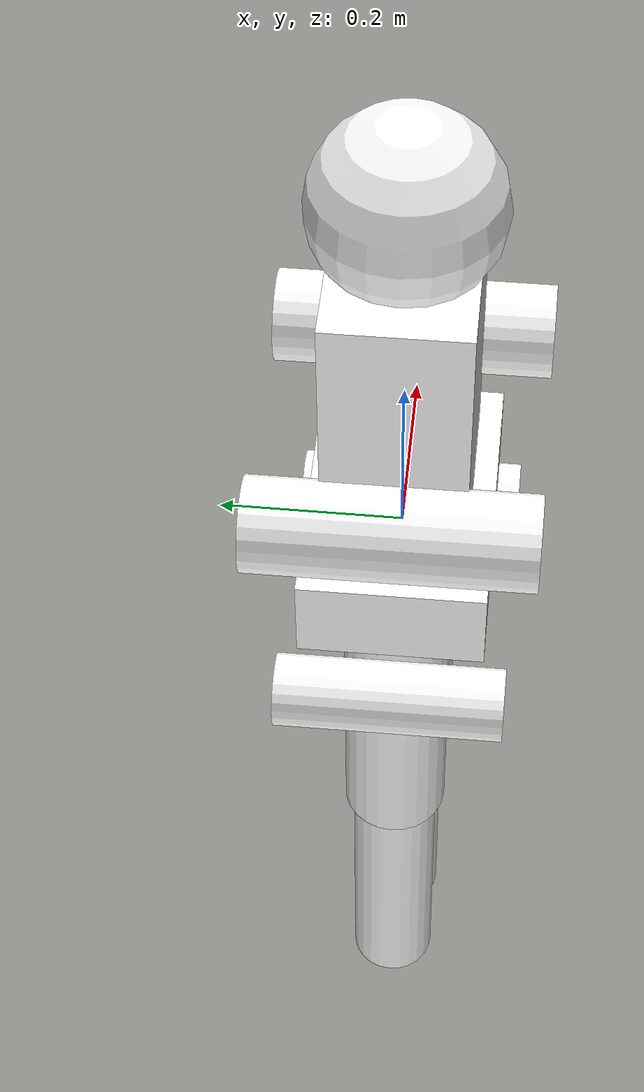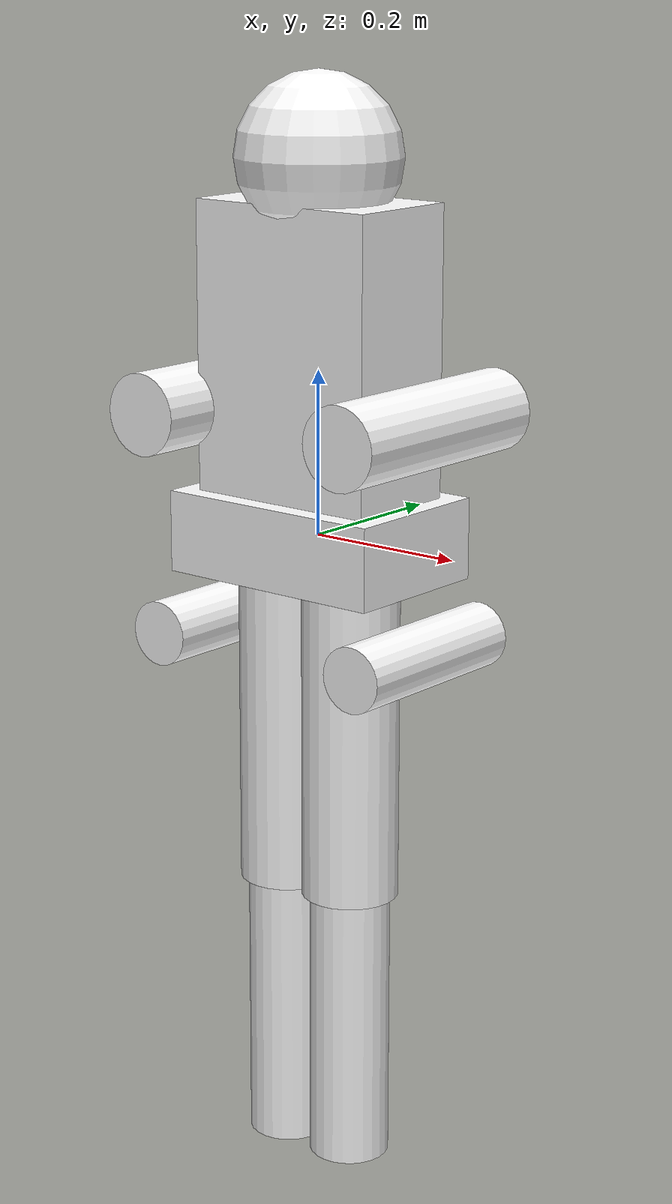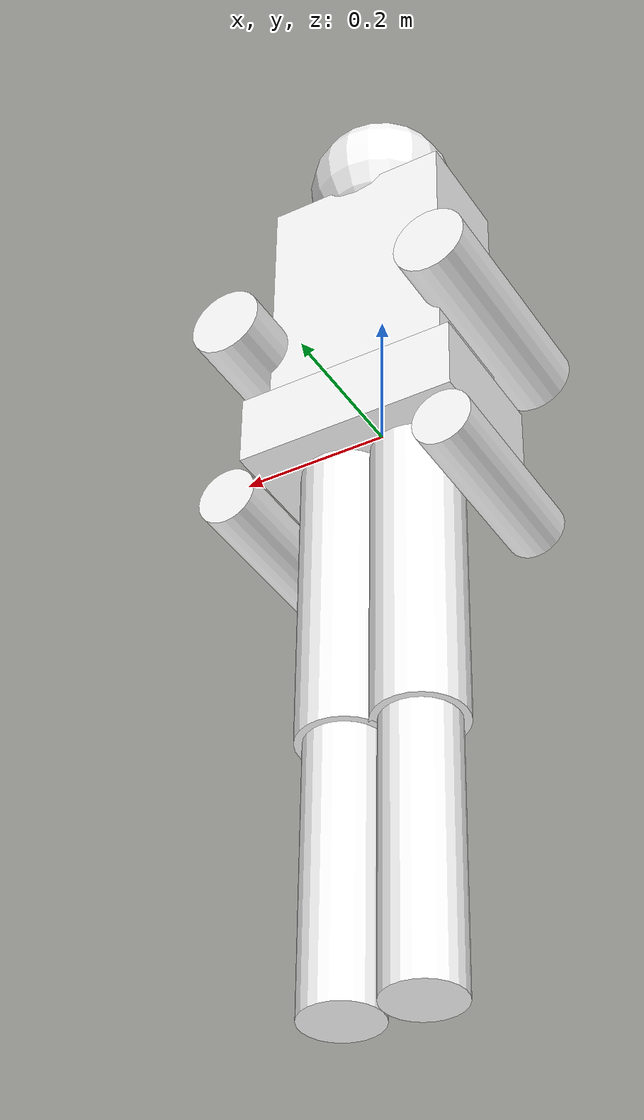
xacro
<?xml version="1.0"?>
<robot name="simple_humanoid" xmlns:xacro="http://www.ros.org/wiki/xacro">

  <!-- Include sensor macros -->
  <xacro:include filename="$(find humanoid_description)/urdf/sensors/lidar.urdf.xacro" />
  <xacro:include filename="$(find humanoid_description)/urdf/sensors/camera.urdf.xacro" />
  <xacro:include filename="$(find humanoid_description)/urdf/sensors/imu.urdf.xacro" />

  <!-- Materials -->
  <material name="blue">
    <color rgba="0.0 0.0 0.8 1.0"/>
  </material>
  <material name="green">
    <color rgba="0.0 0.8 0.0 1.0"/>
  </material>
  <material name="red">
    <color rgba="0.8 0.0 0.0 1.0"/>
  </material>
  <material name="white">
    <color rgba="1.0 1.0 1.0 1.0"/>
  </material>
  <material name="black">
    <color rgba="0.0 0.0 0.0 1.0"/>
  </material>

  <!-- Base Link -->
  <link name="base_link">
    <visual>
      <geometry>
        <box size="0.3 0.2 0.1"/>
      </geometry>
      <material name="white"/>
    </visual>
    <collision>
      <geometry>
        <box size="0.3 0.2 0.1"/>
      </geometry>
    </collision>
    <inertial>
      <mass value="5.0"/>
      <inertia ixx="0.1" ixy="0.0" ixz="0.0" iyy="0.1" iyz="0.0" izz="0.1"/>
    </inertial>
  </link>

  <!-- Torso -->
  <joint name="torso_joint" type="fixed">
    <parent link="base_link"/>
    <child link="torso"/>
    <origin xyz="0 0 0.2" rpy="0 0 0"/>
  </joint>

  <link name="torso">
    <visual>
      <geometry>
        <box size="0.25 0.15 0.4"/>
      </geometry>
      <material name="white"/>
    </visual>
    <collision>
      <geometry>
        <box size="0.25 0.15 0.4"/>
      </geometry>
    </collision>
    <inertial>
      <mass value="3.0"/>
      <inertia ixx="0.05" ixy="0.0" ixz="0.0" iyy="0.05" iyz="0.0" izz="0.05"/>
    </inertial>
  </link>

  <!-- Head -->
  <joint name="neck_joint" type="revolute">
    <parent link="torso"/>
    <child link="head"/>
    <origin xyz="0 0 0.25" rpy="0 0 0"/>
    <axis xyz="0 1 0"/>
    <limit lower="-1.57" upper="1.57" effort="10.0" velocity="1.0"/>
  </joint>

  <link name="head">
    <visual>
      <geometry>
        <sphere radius="0.1"/>
      </geometry>
      <material name="white"/>
    </visual>
    <collision>
      <geometry>
        <sphere radius="0.1"/>
      </geometry>
    </collision>
    <inertial>
      <mass value="1.0"/>
      <inertia ixx="0.001" ixy="0.0" ixz="0.0" iyy="0.001" iyz="0.0" izz="0.001"/>
    </inertial>
  </link>

  <!-- Add LiDAR sensor on top of head -->
  <xacro:lidar_sensor name="laser" parent="head">
    <origin xyz="0 0 0.05" rpy="0 0 0"/>
  </xacro:lidar_sensor>

  <!-- Add depth camera on face -->
  <xacro:depth_camera name="camera" parent="head">
    <origin xyz="0.05 0 0" rpy="0 0 0"/>
  </xacro:depth_camera>

  <!-- Add IMU in torso -->
  <xacro:imu_sensor name="imu" parent="torso">
    <origin xyz="0 0 0" rpy="0 0 0"/>
  </xacro:imu_sensor>

  <!-- Left Arm -->
  <joint name="left_shoulder_joint" type="revolute">
    <parent link="torso"/>
    <child link="left_upper_arm"/>
    <origin xyz="0.15 0 0.1" rpy="0 0 0"/>
    <axis xyz="0 1 0"/>
    <limit lower="-1.57" upper="1.57" effort="10.0" velocity="1.0"/>
  </joint>

  <link name="left_upper_arm">
    <visual>
      <geometry>
        <cylinder length="0.3" radius="0.05"/>
      </geometry>
      <material name="white"/>
      <origin xyz="0 0 -0.15" rpy="1.57 0 0"/>
    </visual>
    <collision>
      <geometry>
        <cylinder length="0.3" radius="0.05"/>
      </geometry>
      <origin xyz="0 0 -0.15" rpy="1.57 0 0"/>
    </collision>
    <inertial>
      <mass value="0.5"/>
      <inertia ixx="0.001" ixy="0.0" ixz="0.0" iyy="0.001" iyz="0.0" izz="0.001"/>
    </inertial>
  </link>

  <joint name="left_elbow_joint" type="revolute">
    <parent link="left_upper_arm"/>
    <child link="left_lower_arm"/>
    <origin xyz="0 0 -0.3" rpy="0 0 0"/>
    <axis xyz="0 1 0"/>
    <limit lower="-1.57" upper="1.57" effort="10.0" velocity="1.0"/>
  </joint>

  <link name="left_lower_arm">
    <visual>
      <geometry>
        <cylinder length="0.25" radius="0.04"/>
      </geometry>
      <material name="white"/>
      <origin xyz="0 0 -0.125" rpy="1.57 0 0"/>
    </visual>
    <collision>
      <geometry>
        <cylinder length="0.25" radius="0.04"/>
      </geometry>
      <origin xyz="0 0 -0.125" rpy="1.57 0 0"/>
    </collision>
    <inertial>
      <mass value="0.3"/>
      <inertia ixx="0.0005" ixy="0.0" ixz="0.0" iyy="0.0005" iyz="0.0" izz="0.0005"/>
    </inertial>
  </link>

  <!-- Right Arm -->
  <joint name="right_shoulder_joint" type="revolute">
    <parent link="torso"/>
    <child link="right_upper_arm"/>
    <origin xyz="-0.15 0 0.1" rpy="0 0 0"/>
    <axis xyz="0 1 0"/>
    <limit lower="-1.57" upper="1.57" effort="10.0" velocity="1.0"/>
  </joint>

  <link name="right_upper_arm">
    <visual>
      <geometry>
        <cylinder length="0.3" radius="0.05"/>
      </geometry>
      <material name="white"/>
      <origin xyz="0 0 -0.15" rpy="1.57 0 0"/>
    </visual>
    <collision>
      <geometry>
        <cylinder length="0.3" radius="0.05"/>
      </geometry>
      <origin xyz="0 0 -0.15" rpy="1.57 0 0"/>
    </collision>
    <inertial>
      <mass value="0.5"/>
      <inertia ixx="0.001" ixy="0.0" ixz="0.0" iyy="0.001" iyz="0.0" izz="0.001"/>
    </inertial>
  </link>

  <joint name="right_elbow_joint" type="revolute">
    <parent link="right_upper_arm"/>
    <child link="right_lower_arm"/>
    <origin xyz="0 0 -0.3" rpy="0 0 0"/>
    <axis xyz="0 1 0"/>
    <limit lower="-1.57" upper="1.57" effort="10.0" velocity="1.0"/>
  </joint>

  <link name="right_lower_arm">
    <visual>
      <geometry>
        <cylinder length="0.25" radius="0.04"/>
      </geometry>
      <material name="white"/>
      <origin xyz="0 0 -0.125" rpy="1.57 0 0"/>
    </visual>
    <collision>
      <geometry>
        <cylinder length="0.25" radius="0.04"/>
      </geometry>
      <origin xyz="0 0 -0.125" rpy="1.57 0 0"/>
    </collision>
    <inertial>
      <mass value="0.3"/>
      <inertia ixx="0.0005" ixy="0.0" ixz="0.0" iyy="0.0005" iyz="0.0" izz="0.0005"/>
    </inertial>
  </link>

  <!-- Left Leg -->
  <joint name="left_hip_joint" type="revolute">
    <parent link="base_link"/>
    <child link="left_upper_leg"/>
    <origin xyz="0.05 0 -0.05" rpy="0 0 0"/>
    <axis xyz="1 0 0"/>
    <limit lower="-1.57" upper="1.57" effort="10.0" velocity="1.0"/>
  </joint>

  <link name="left_upper_leg">
    <visual>
      <geometry>
        <cylinder length="0.4" radius="0.06"/>
      </geometry>
      <material name="white"/>
      <origin xyz="0 0 -0.2" rpy="0 0 0"/>
    </visual>
    <collision>
      <geometry>
        <cylinder length="0.4" radius="0.06"/>
      </geometry>
      <origin xyz="0 0 -0.2" rpy="0 0 0"/>
    </collision>
    <inertial>
      <mass value="1.0"/>
      <inertia ixx="0.002" ixy="0.0" ixz="0.0" iyy="0.002" iyz="0.0" izz="0.002"/>
    </inertial>
  </link>

  <joint name="left_knee_joint" type="revolute">
    <parent link="left_upper_leg"/>
    <child link="left_lower_leg"/>
    <origin xyz="0 0 -0.4" rpy="0 0 0"/>
    <axis xyz="1 0 0"/>
    <limit lower="-1.57" upper="0" effort="10.0" velocity="1.0"/>
  </joint>

  <link name="left_lower_leg">
    <visual>
      <geometry>
        <cylinder length="0.35" radius="0.05"/>
      </geometry>
      <material name="white"/>
      <origin xyz="0 0 -0.175" rpy="0 0 0"/>
    </visual>
    <collision>
      <geometry>
        <cylinder length="0.35" radius="0.05"/>
      </geometry>
      <origin xyz="0 0 -0.175" rpy="0 0 0"/>
    </collision>
    <inertial>
      <mass value="0.8"/>
      <inertia ixx="0.001" ixy="0.0" ixz="0.0" iyy="0.001" iyz="0.0" izz="0.001"/>
    </inertial>
  </link>

  <!-- Right Leg -->
  <joint name="right_hip_joint" type="revolute">
    <parent link="base_link"/>
    <child link="right_upper_leg"/>
    <origin xyz="-0.05 0 -0.05" rpy="0 0 0"/>
    <axis xyz="1 0 0"/>
    <limit lower="-1.57" upper="1.57" effort="10.0" velocity="1.0"/>
  </joint>

  <link name="right_upper_leg">
    <visual>
      <geometry>
        <cylinder length="0.4" radius="0.06"/>
      </geometry>
      <material name="white"/>
      <origin xyz="0 0 -0.2" rpy="0 0 0"/>
    </visual>
    <collision>
      <geometry>
        <cylinder length="0.4" radius="0.06"/>
      </geometry>
      <origin xyz="0 0 -0.2" rpy="0 0 0"/>
    </collision>
    <inertial>
      <mass value="1.0"/>
      <inertia ixx="0.002" ixy="0.0" ixz="0.0" iyy="0.002" iyz="0.0" izz="0.002"/>
    </inertial>
  </link>

  <joint name="right_knee_joint" type="revolute">
    <parent link="right_upper_leg"/>
    <child link="right_lower_leg"/>
    <origin xyz="0 0 -0.4" rpy="0 0 0"/>
    <axis xyz="1 0 0"/>
    <limit lower="-1.57" upper="0" effort="10.0" velocity="1.0"/>
  </joint>

  <link name="right_lower_leg">
    <visual>
      <geometry>
        <cylinder length="0.35" radius="0.05"/>
      </geometry>
      <material name="white"/>
      <origin xyz="0 0 -0.175" rpy="0 0 0"/>
    </visual>
    <collision>
      <geometry>
        <cylinder length="0.35" radius="0.05"/>
      </geometry>
      <origin xyz="0 0 -0.175" rpy="0 0 0"/>
    </collision>
    <inertial>
      <mass value="0.8"/>
      <inertia ixx="0.001" ixy="0.0" ixz="0.0" iyy="0.001" iyz="0.0" izz="0.001"/>
    </inertial>
  </link>

  <!-- Gazebo plugin for ROS control -->
  <gazebo>
    <plugin name="gazebo_ros_control" filename="libgazebo_ros_control.so">
      <robotNamespace>/simple_humanoid</robotNamespace>
    </plugin>
  </gazebo>

</robot>

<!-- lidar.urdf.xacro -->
<robot xmlns:xacro="http://www.ros.org/wiki/xacro">

  <xacro:macro name="lidar_sensor" params="name parent *origin ros_topic:=/scan update_rate:=5.0 ray_count:=64 range_min:=0.12 range_max:=3.5 scan_width:=360 scan_height:=1">

    <joint name="${name}_joint" type="fixed">
      <xacro:insert_block name="origin" />
      <parent link="${parent}"/>
      <child link="${name}_link"/>
    </joint>

    <link name="${name}_link">
      <inertial>
        <mass value="0.1" />
        <inertia ixx="0.001" ixy="0" ixz="0" iyy="0.001" iyz="0" izz="0.001" />
      </inertial>
      <visual>
        <geometry>
          <cylinder radius="0.05" length="0.04"/>
        </geometry>
        <material name="black">
          <color rgba="0 0 0 1"/>
        </material>
      </visual>
      <collision>
        <geometry>
          <cylinder radius="0.05" length="0.04"/>
        </geometry>
      </collision>
    </link>

    <gazebo reference="${name}_link">
      <sensor type="ray" name="${name}_sensor">
        <always_on>true</always_on>
        <update_rate>${update_rate}</update_rate>
        <ray>
          <scan>
            <horizontal>
              <samples>${ray_count}</samples>
              <resolution>1</resolution>
              <min_angle>0</min_angle>
              <max_angle>${scan_width * math.pi / 180}</max_angle>
            </horizontal>
            <vertical>
              <samples>${scan_height}</samples>
              <resolution>1</resolution>
              <min_angle>0</min_angle>
              <max_angle>0</max_angle>
            </vertical>
          </scan>
          <range>
            <min>${range_min}</min>
            <max>${range_max}</max>
            <resolution>0.01</resolution>
          </range>
        </ray>
        <plugin name="gazebo_ros_${name}_controller" filename="libgazebo_ros_ray_sensor.so">
          <ros>
            <namespace>/</namespace>
            <remapping>~/out:=${ros_topic}</remapping>
          </ros>
          <output_type>sensor_msgs/LaserScan</output_type>
        </plugin>
      </sensor>
    </gazebo>
  </xacro:macro>

</robot>

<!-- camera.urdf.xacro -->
<robot xmlns:xacro="http://www.ros.org/wiki/xacro">

  <xacro:macro name="depth_camera" params="name parent *origin ros_topic:=/camera/depth/image_raw update_rate:=30.0 horizontal_fov:=1.06 min_range:=0.1 max_range:=10.0 image_width:=640 image_height:=480">

    <joint name="${name}_joint" type="fixed">
      <xacro:insert_block name="origin" />
      <parent link="${parent}"/>
      <child link="${name}_link"/>
    </joint>

    <link name="${name}_link">
      <inertial>
        <mass value="0.1" />
        <inertia ixx="0.001" ixy="0" ixz="0" iyy="0.001" iyz="0" izz="0.001" />
      </inertial>
      <visual>
        <geometry>
          <box size="0.02 0.08 0.04"/>
        </geometry>
        <material name="black">
          <color rgba="0 0 0 1"/>
        </material>
      </visual>
      <collision>
        <geometry>
          <box size="0.02 0.08 0.04"/>
        </geometry>
      </collision>
    </link>

    <gazebo reference="${name}_link">
      <sensor type="depth" name="${name}_sensor">
        <always_on>true</always_on>
        <update_rate>${update_rate}</update_rate>
        <camera name="head">
          <horizontal_fov>${horizontal_fov}</horizontal_fov>
          <image>
            <width>${image_width}</width>
            <height>${image_height}</height>
            <format>R8G8B8</format>
          </image>
          <clip>
            <near>${min_range}</near>
            <far>${max_range}</far>
          </clip>
        </camera>
        <plugin name="gazebo_ros_${name}_camera" filename="libgazebo_ros_openni_kinect.so">
          <alwaysOn>true</alwaysOn>
          <updateRate>${update_rate}</updateRate>
          <cameraName>${name}</cameraName>
          <imageTopicName>/${ros_topic}</imageTopicName>
          <depthImageTopicName>/camera/depth/image_raw</depthImageTopicName>
          <pointCloudTopicName>/camera/depth/points</pointCloudTopicName>
          <cameraInfoTopicName>/camera/camera_info</cameraInfoTopicName>
          <depthImageCameraInfoTopicName>/camera/depth/camera_info</depthImageCameraInfoTopicName>
          <frameName>${name}_optical_frame</frameName>
          <baseline>0.1</baseline>
          <distortion_k1>0.0</distortion_k1>
          <distortion_k2>0.0</distortion_k2>
          <distortion_k3>0.0</distortion_k3>
          <distortion_t1>0.0</distortion_t1>
          <distortion_t2>0.0</distortion_t2>
          <pointCloudCutoff>0.1</pointCloudCutoff>
          <pointCloudCutoffMax>3.0</pointCloudCutoffMax>
          <CxPrime>0.0</CxPrime>
          <Cx>0.0</Cx>
          <Cy>0.0</Cy>
          <focalLength>0.0</focalLength>
          <hackBaseline>0.0</hackBaseline>
        </plugin>
      </sensor>
    </gazebo>

    <!-- Optical frame for camera -->
    <joint name="${name}_optical_joint" type="fixed">
      <origin xyz="0 0 0" rpy="${-math.pi/2} 0 ${-math.pi/2}" />
      <parent link="${name}_link" />
      <child link="${name}_optical_frame" />
    </joint>

    <link name="${name}_optical_frame" />

  </xacro:macro>

</robot>

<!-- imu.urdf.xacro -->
<robot xmlns:xacro="http://www.ros.org/wiki/xacro">

  <xacro:macro name="imu_sensor" params="name parent *origin ros_topic:=/imu/data update_rate:=100.0">

    <joint name="${name}_joint" type="fixed">
      <xacro:insert_block name="origin" />
      <parent link="${parent}"/>
      <child link="${name}_link"/>
    </joint>

    <link name="${name}_link">
      <inertial>
        <mass value="0.01" />
        <inertia ixx="0.0001" ixy="0" ixz="0" iyy="0.0001" iyz="0" izz="0.0001" />
      </inertial>
      <visual>
        <geometry>
          <box size="0.01 0.01 0.01"/>
        </geometry>
        <material name="red">
          <color rgba="1 0 0 1"/>
        </material>
      </visual>
      <collision>
        <geometry>
          <box size="0.01 0.01 0.01"/>
        </geometry>
      </collision>
    </link>

    <gazebo reference="${name}_link">
      <sensor name="${name}_sensor" type="imu">
        <always_on>true</always_on>
        <update_rate>${update_rate}</update_rate>
        <visualize>true</visualize>
        <imu>
          <angular_velocity>
            <x>
              <noise type="gaussian">
                <mean>0.0</mean>
                <stddev>2e-4</stddev>
              </noise>
            </x>
            <y>
              <noise type="gaussian">
                <mean>0.0</mean>
                <stddev>2e-4</stddev>
              </noise>
            </y>
            <z>
              <noise type="gaussian">
                <mean>0.0</mean>
                <stddev>2e-4</stddev>
              </noise>
            </z>
          </angular_velocity>
          <linear_acceleration>
            <x>
              <noise type="gaussian">
                <mean>0.0</mean>
                <stddev>1.7e-2</stddev>
              </noise>
            </x>
            <y>
              <noise type="gaussian">
                <mean>0.0</mean>
                <stddev>1.7e-2</stddev>
              </noise>
            </y>
            <z>
              <noise type="gaussian">
                <mean>0.0</mean>
                <stddev>1.7e-2</stddev>
              </noise>
            </z>
          </linear_acceleration>
        </imu>
        <plugin name="gazebo_ros_${name}_controller" filename="libgazebo_ros_imu_sensor.so">
          <ros>
            <namespace>/</namespace>
            <remapping>~/out:=${ros_topic}</remapping>
          </ros>
          <initial_orientation_as_reference>false</initial_orientation_as_reference>
        </plugin>
      </sensor>
    </gazebo>

  </xacro:macro>

</robot>
